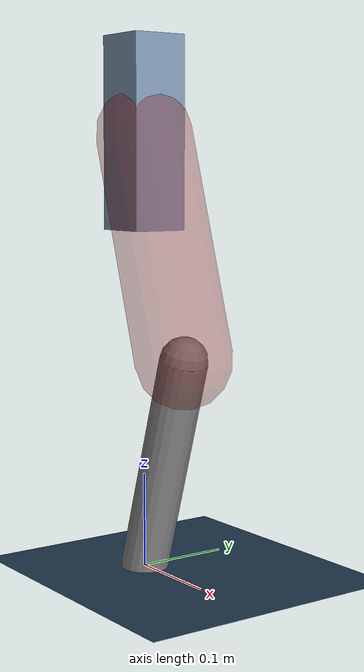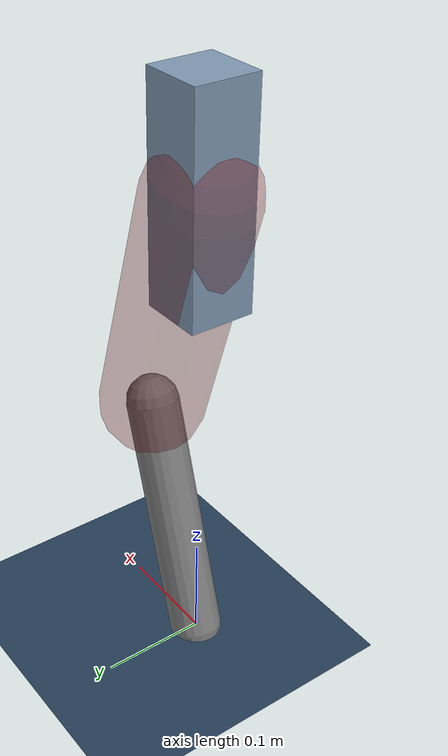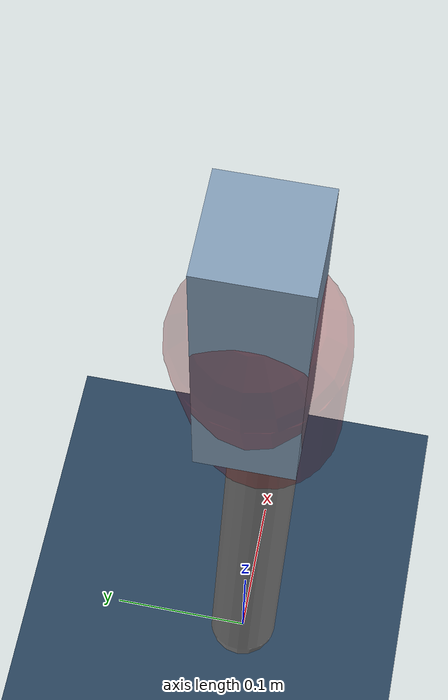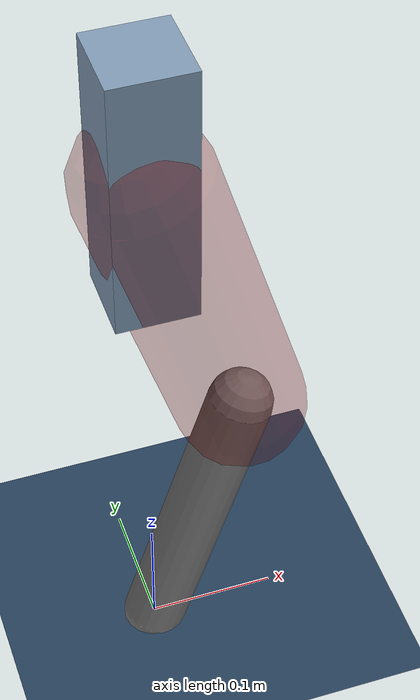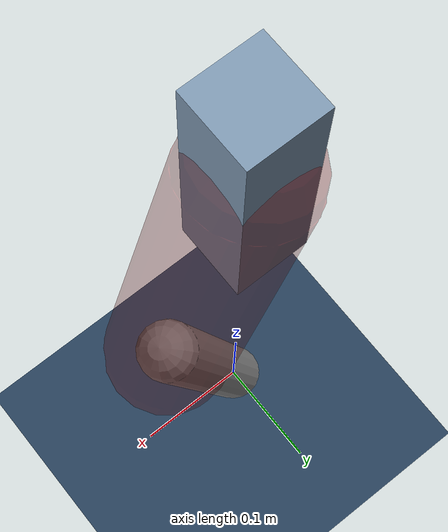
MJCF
<mujoco model="Hopper2D">
	<compiler inertiafromgeom="true" angle="radian" />
	<option timestep="0.001" integrator="implicit" cone="elliptic" solver="Newton" tolerance="1e-10" />

	<default>
		<geom contype="1" conaffinity="1" condim="3" friction="2 0.005 0.0001" solref="0.005 1" />
		<joint limited="true" damping="0.1" />
	</default>

	<asset>
		<texture name="skybox" type="skybox" builtin="gradient" rgb1=".4 .6 .8" rgb2="0 0 0" width="800" height="800" />
		<texture name="grid" type="2d" builtin="checker" rgb1=".1 .2 .3" rgb2=".2 .3 .4" width="300" height="300" mark="edge" markrgb=".2 .3 .4" />
		<material name="ground" texture="grid" texrepeat="1 1" texuniform="true" reflectance="0.1" />
		<material name="leg" rgba="0.5 0.6 0.7 1" />
	</asset>

	<worldbody>

		<geom name="floor" type="plane" size="5 5 0.25" material="ground" />

		<light directional="false" diffuse="0.8 0.8 0.8" specular="0.3 0.3 0.3" pos="0 0 2" dir="0 0 -1" />
		<light mode="targetbodycom" target="base" directional="false" diffuse="0.8 0.8 0.8" specular="0.3 0.3 0.3" pos="0 0 2" dir="0 0 -1" />

		<camera name="fixed" pos="0 -2 1" xyaxes="1 0 0 0 0 1" />
		<camera name="tracking" mode="trackcom" pos="0 -3 1" />

		<body name="root" pos="0 0 0.4600353003466877">
			<joint name="slide_x" type="slide" axis="1 0 0" range="-100 100" />
			<joint name="slide_z" type="slide" axis="0 0 1" range="0 10" />

			<body name="base" pos="0 0 0">
				<geom name="torso" type="box" size="0.03 0.03 0.1" mass="2.4379999999999997" material="leg" />

				<body name="link1" pos="0 0 0" euler="0 1.2706271285998207 0">
					<joint type="hinge" axis="0 -1 0" pos="0 0 0" name="hinge1" limited="true" range="-3.14 3.14" stiffness="0" damping="0.1" />
					<geom name="thigh" type="capsule" fromto="0 0 0 0.24052964537343938 0 0" size="0.05" rgba="0.5 0 0 0.3" mass="0.8319770779709424" />

					<body name="link2" pos="0.24052964537343938 0 0" euler="0 0.5997422733433652 0">
						<joint type="hinge" axis="0 -1 0" pos="0 0 0" name="hinge2" limited="true" range="-3.14 3.14" stiffness="0" damping="0.1" />
						<geom name="shank" type="capsule" fromto="0 0 0 0.2409938301000038 0 0" size="0.025" mass="0.43509506408000304" />

					</body>
				</body>
			</body>
		</body>
	</worldbody>

	<actuator>
		<motor name="torque1" joint="hinge1" ctrlrange="-117.93737439647452 117.93737439647452" ctrllimited="true" gear="1" />
		<motor name="torque2" joint="hinge2" ctrlrange="-19.27688594387744 19.27688594387744" ctrllimited="true" gear="1" />
	</actuator>
</mujoco>
